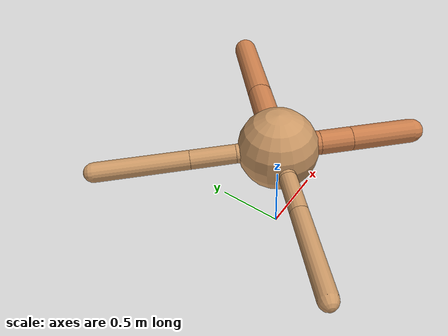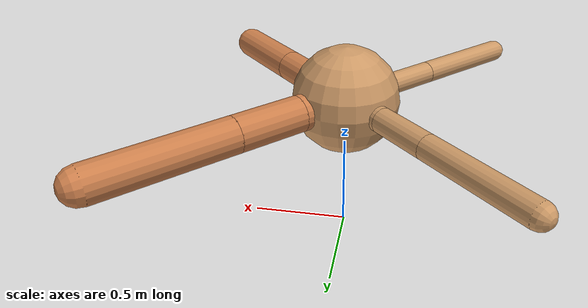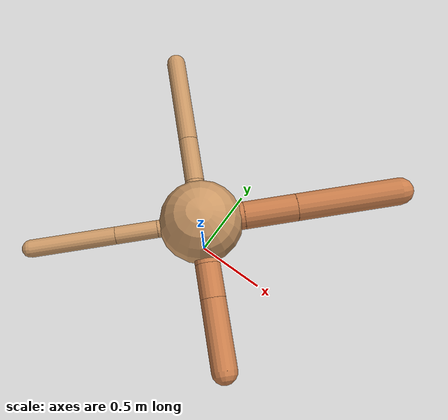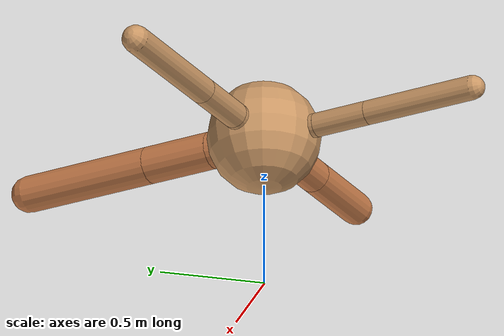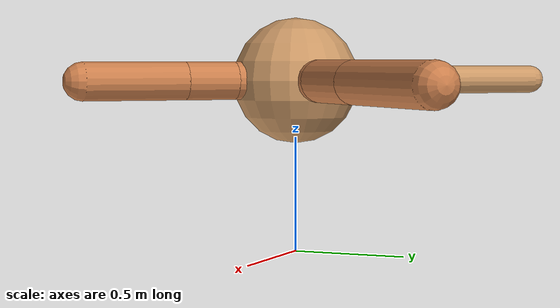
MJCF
<?xml version="1.0" ?>
<mujoco model="ant">

	<compiler angle="degree" coordinate="local" inertiafromgeom="true"/>

	<option integrator="RK4" timestep="0.01"/>

	<custom>

		<numeric data="0.0 0.0 0.55 1.0 0.0 0.0 0.0 0.0 1.0 0.0 -1.0 0.0 -1.0 0.0 1.0" name="init_qpos"/>

	</custom>

	<default>

		<joint armature="1" damping="1" limited="true"/>

		<geom conaffinity="0" condim="3" density="5.0" friction="1.5 0.1 0.1" margin="0.01" rgba="0.8 0.6 0.4 1"/>

	</default>

	<worldbody>

		<body name="torso" pos="0 0 0.75">

			<geom name="torso_geom" pos="0 0 0" size="0.2731161462358187" type="sphere"/>

			<!--joint armature="0" damping="0" limited="false" margin="0.01" name="root" pos="0 0 0" type="free"/-->

			<body name="front_left_leg" pos="0 0 0">

				<geom fromto="0 0 0 0.2 0.2 0" name="aux_1_geom" size="0.0908823743920717" type="capsule" rgba=".8 .5 .3 1"/>

				<body name="aux_1" pos="0.2 0.2 0">

					<joint axis="0 0 1" name="hip_1" pos="0.0 0.0 0.0" range="-40 40" type="hinge"/>

					<geom fromto="0 0 0 0.24507565499547393 0.24507565499547393 0" name="left_leg_geom" size="0.0908823743920717" type="capsule" rgba=".8 .5 .3 1"/>

					<body pos="0.24507565499547393 0.24507565499547393 0" name="front_left_foot">

						<joint axis="-1 1 0" name="ankle_1" pos="0.0 0.0 0.0" range="30 100" type="hinge"/>

						<geom fromto="0 0 0 0.49015130999094786 0.49015130999094786 0" name="left_ankle_geom" size="0.0908823743920717" type="capsule" rgba=".8 .5 .3 1"/>

					</body>

				</body>

			</body>

			<body name="front_right_leg" pos="0 0 0">

				<geom fromto="0 0 0 -0.2 0.2 0" name="aux_2_geom" size="0.06358483857233252" type="capsule"/>

				<body name="aux_2" pos="-0.2 0.2 0">

					<joint axis="0 0 1" name="hip_2" pos="0.0 0.0 0.0" range="-40 40" type="hinge"/>

					<geom fromto="0 0 0 -0.21097582271523463 0.21097582271523463 0" name="right_leg_geom" size="0.06358483857233252" type="capsule"/>

					<body pos="-0.21097582271523463 0.21097582271523463 0" name="front_right_foot">

						<joint axis="1 1 0" name="ankle_2" pos="0.0 0.0 0.0" range="-100 -30" type="hinge"/>

						<geom fromto="0 0 0 -0.42195164543046926 0.42195164543046926 0" name="right_ankle_geom" size="0.06358483857233252" type="capsule"/>

					</body>

				</body>

			</body>

			<body name="left_back_leg" pos="0 0 0">

				<geom fromto="0 0 0 -0.2 -0.2 0" name="aux_3_geom" size="0.057341780435642704" type="capsule"/>

				<body name="aux_3" pos="-0.2 -0.2 0">

					<joint axis="0 0 1" name="hip_3" pos="0.0 0.0 0.0" range="-40 40" type="hinge"/>

					<geom fromto="0 0 0 -0.1917260047827585 -0.1917260047827585 0" name="back_leg_geom" size="0.057341780435642704" type="capsule"/>

					<body pos="-0.1917260047827585 -0.1917260047827585 0" name="left_back_foot">

						<joint axis="-1 1 0" name="ankle_3" pos="0.0 0.0 0.0" range="-100 -30" type="hinge"/>

						<geom fromto="0 0 0 -0.383452009565517 -0.383452009565517 0" name="third_ankle_geom" size="0.057341780435642704" type="capsule"/>

					</body>

				</body>

			</body>

			<body name="right_back_leg" pos="0 0 0">

				<geom fromto="0 0 0 0.2 -0.2 0" name="aux_4_geom" size="0.08198662448424171" type="capsule" rgba=".8 .5 .3 1"/>

				<body name="aux_4" pos="0.2 -0.2 0">

					<joint axis="0 0 1" name="hip_4" pos="0.0 0.0 0.0" range="-40 40" type="hinge"/>

					<geom fromto="0 0 0 0.15591663965924038 -0.15591663965924038 0" name="rightback_leg_geom" size="0.08198662448424171" type="capsule" rgba=".8 .5 .3 1"/>

					<body pos="0.15591663965924038 -0.15591663965924038 0" name="right_back_foot">

						<joint axis="1 1 0" name="ankle_4" pos="0.0 0.0 0.0" range="30 100" type="hinge"/>

						<geom fromto="0 0 0 0.31183327931848076 -0.31183327931848076 0" name="fourth_ankle_geom" size="0.08198662448424171" type="capsule" rgba=".8 .5 .3 1"/>

					</body>

				</body>

			</body>

		</body>

	</worldbody>

	<actuator>

		<motor ctrllimited="true" ctrlrange="-1.0 1.0" joint="hip_4" gear="150"/>

		<motor ctrllimited="true" ctrlrange="-1.0 1.0" joint="ankle_4" gear="150"/>

		<motor ctrllimited="true" ctrlrange="-1.0 1.0" joint="hip_1" gear="150"/>

		<motor ctrllimited="true" ctrlrange="-1.0 1.0" joint="ankle_1" gear="150"/>

		<motor ctrllimited="true" ctrlrange="-1.0 1.0" joint="hip_2" gear="150"/>

		<motor ctrllimited="true" ctrlrange="-1.0 1.0" joint="ankle_2" gear="150"/>

		<motor ctrllimited="true" ctrlrange="-1.0 1.0" joint="hip_3" gear="150"/>

		<motor ctrllimited="true" ctrlrange="-1.0 1.0" joint="ankle_3" gear="150"/>

	</actuator>

</mujoco>
